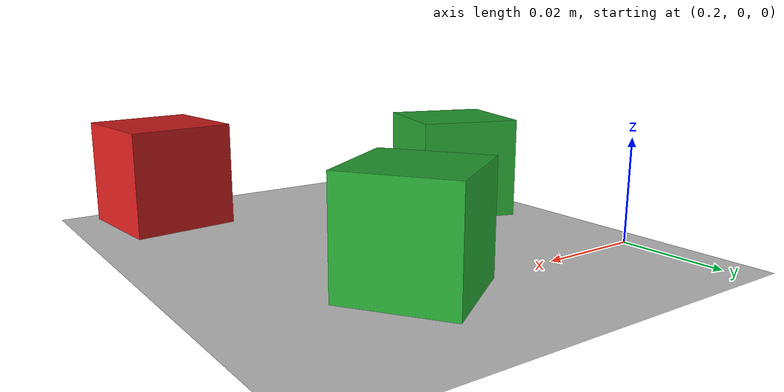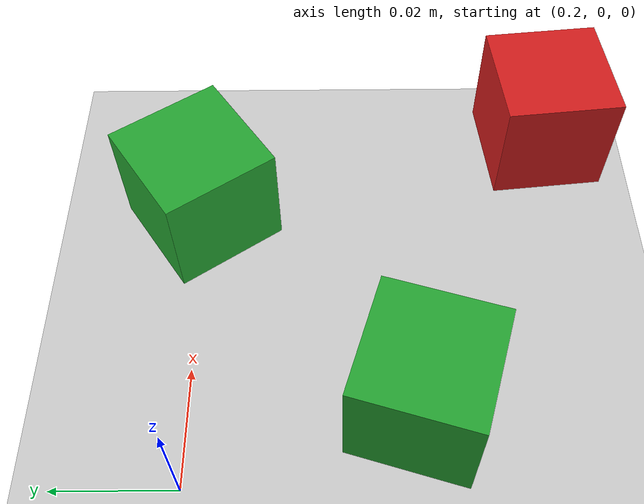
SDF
<sdf version='1.7'>
  <world name='default'>
    <scene>
      <ambient>0 0 0 1</ambient>
      <shadows>0</shadows>
      <background>0.7 0.7 0.7 1</background>
    </scene>
    <!-- A global light source -->
    <include>
      <uri>model://sun</uri>
    </include>
    <!-- A ground plane -->
    <include>
      <uri>model://ground_plane</uri>
    </include>

    <!-- Cubes for Niryo Workspace -->
    <model name='cube_red'>
      <include>
        <uri>model://cube_red</uri>
      </include>
      <pose frame=''>0.267 -0.062 0.011 0.0 0.0 0.1</pose>
    </model>
    <model name='cube_green'>
      <include>
        <uri>model://cube_green</uri>
      </include>
      <pose frame=''>0.212 -0.0369 0.011 0 0 -0.3</pose>
    </model>
    <model name='cube_green2'>
      <include>
        <uri>model://cube_green</uri>
      </include>
      <pose frame=''>0.25 0 0.011 0 -0 0.6</pose>
    </model>

    <physics name='default_physics' default='0' type='ode'>
      <max_step_size>0.001</max_step_size>
      <real_time_factor>1</real_time_factor>
      <real_time_update_rate>1000</real_time_update_rate>
    </physics>
    <gui fullscreen='0'>
      <camera name='user_camera'>
        <pose frame=''>0.498673 -1.52506 0.903313 0 0.429798 1.824</pose>
        <view_controller>orbit</view_controller>
        <projection_type>perspective</projection_type>
      </camera>
    </gui>
    <gravity>0 0 -9.8</gravity>
    <magnetic_field>6e-06 2.3e-05 -4.2e-05</magnetic_field>
    <atmosphere type='adiabatic'/>
    <wind/>
    <spherical_coordinates>
      <surface_model>EARTH_WGS84</surface_model>
      <latitude_deg>0</latitude_deg>
      <longitude_deg>0</longitude_deg>
      <elevation>0</elevation>
      <heading_deg>0</heading_deg>
    </spherical_coordinates>

    <!-- SplotLight source -->
    <light name='user_spot_light_0' type='spot'>
      <pose>0.24066 -0.017779 1 0 -0 0</pose>
      <diffuse>0.5 0.5 0.5 1</diffuse>
      <specular>0.1 0.1 0.1 1</specular>
      <direction>0 0 -1</direction>
      <attenuation>
        <range>20</range>
        <constant>0.5</constant>
        <linear>0.01</linear>
        <quadratic>0.001</quadratic>
      </attenuation>
      <cast_shadows>0</cast_shadows>
      <spot>
        <inner_angle>0.6</inner_angle>
        <outer_angle>1</outer_angle>
        <falloff>1</falloff>
      </spot>
    </light>

  </world>
</sdf>

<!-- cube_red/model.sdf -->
<sdf version='1.6'>
  <model name='cube_red'>
    <link name='link_1'>
      <inertial>
        <mass>1e-4</mass>
        <inertia>
          <ixx>1.0e-8</ixx>
          <ixy>0</ixy>
          <ixz>0</ixz>
          <iyy>1.0e-8</iyy>
          <iyz>0</iyz>
          <izz>1.0e-8</izz>
        </inertia>
        <pose frame=''>0 0 0 0 -0 0</pose>
      </inertial>
      <pose frame=''>0 0 0 0 -0 0</pose>
      <gravity>1</gravity>
      <self_collide>0</self_collide>
      <kinematic>0</kinematic>
      <enable_wind>0</enable_wind>
      <visual name='visual'>
        <pose frame=''>0 0 0 0 -0 0</pose>
        <geometry>
          <box>
            <size>0.02 0.02 0.02</size>
          </box>
        </geometry>
        <material>
          <lighting>1</lighting>
          <script>
            <uri>file://media/materials/scripts/gazebo.material</uri>
            <name>Gazebo/Grey</name>
          </script>
          <shader type='vertex'>
            <normal_map>__default__</normal_map>
          </shader>
          <ambient>0.643 0 0 1</ambient>
          <diffuse>0.835 0.114 0.114 1</diffuse>
          <specular>0.333 0.341 0.325 1</specular>
          <emissive>0 0 0 1</emissive>
        </material>
        <transparency>0</transparency>
        <cast_shadows>1</cast_shadows>
      </visual>
      <collision name='collision'>
        <laser_retro>0</laser_retro>
        <max_contacts>50</max_contacts>
        <pose frame=''>0 0 0 0 -0 0</pose>
        <geometry>
          <box>
            <size>0.02 0.02 0.02</size>
          </box>
        </geometry>
        <surface>
          <friction>
            <ode>
              <mu>1e+6</mu>
              <mu2>1e+6</mu2>
            </ode>
            <torsional>
              <coefficient>1</coefficient>
              <patch_radius>0</patch_radius>
              <surface_radius>0</surface_radius>
              <use_patch_radius>1</use_patch_radius>
              <ode>
                <slip>0</slip>
              </ode>
            </torsional>
          </friction>
          <bounce>
            <restitution_coefficient>0</restitution_coefficient>
            <threshold>1e+06</threshold>
          </bounce>
          <contact>
            <collide_without_contact>0</collide_without_contact>
            <collide_without_contact_bitmask>1</collide_without_contact_bitmask>
            <collide_bitmask>1</collide_bitmask>
            <ode>
              <soft_cfm>0</soft_cfm>
              <soft_erp>0.2</soft_erp>
              <kp>1e+13</kp>
              <kd>1</kd>
              <max_vel>0.0</max_vel>
              <min_depth>0.002</min_depth>
            </ode>
            <bullet>
              <split_impulse>1</split_impulse>
              <split_impulse_penetration_threshold>-0.01</split_impulse_penetration_threshold>
              <soft_cfm>0</soft_cfm>
              <soft_erp>0.2</soft_erp>
              <kp>1e+13</kp>
              <kd>1</kd>
            </bullet>
          </contact>
        </surface>
      </collision>
    </link>
    <static>0</static>
    <allow_auto_disable>1</allow_auto_disable>
  </model>
</sdf>

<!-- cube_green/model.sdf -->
<sdf version='1.6'>
  <model name='cube_green'>
    <link name='link_1'>
      <inertial>
        <mass>1e-4</mass>
        <inertia>
          <ixx>1.0e-8</ixx>
          <ixy>0</ixy>
          <ixz>0</ixz>
          <iyy>1.0e-8</iyy>
          <iyz>0</iyz>
          <izz>1.0e-8</izz>
        </inertia>
        <pose frame=''>0 0 0 0 -0 0</pose>
      </inertial>
      <pose frame=''>0 0 0 0 -0 0</pose>
      <gravity>1</gravity>
      <self_collide>0</self_collide>
      <kinematic>0</kinematic>
      <enable_wind>0</enable_wind>
      <visual name='visual'>
        <pose frame=''>0 0 0 0 -0 0</pose>
        <geometry>
          <box>
            <size>0.02 0.02 0.02</size>
          </box>
        </geometry>
        <material>
          <lighting>1</lighting>
          <script>
            <uri>file://media/materials/scripts/gazebo.material</uri>
            <name>Gazebo/Green</name>
          </script>
          <shader type='vertex'>
            <normal_map>__default__</normal_map>
          </shader>
          <ambient>0.208 0.706 0.298 1</ambient>
          <diffuse>0.451 0.824 0.082 1</diffuse>
          <specular>0.18 0.204 0.212 1</specular>
          <emissive>0 0 0 1</emissive>
        </material>
        <transparency>0</transparency>
        <cast_shadows>1</cast_shadows>
      </visual>
      <collision name='collision'>
        <laser_retro>0</laser_retro>
        <max_contacts>50</max_contacts>
        <pose frame=''>0 0 0 0 -0 0</pose>
        <geometry>
          <box>
            <size>0.02 0.02 0.02</size>
          </box>
        </geometry>
        <surface>
          <friction>
            <ode>
              <mu>1e+6</mu>
              <mu2>1e+6</mu2>
            </ode>
            <torsional>
              <coefficient>1</coefficient>
              <patch_radius>0</patch_radius>
              <surface_radius>0</surface_radius>
              <use_patch_radius>1</use_patch_radius>
              <ode>
                <slip>0</slip>
              </ode>
            </torsional>
          </friction>
          <bounce>
            <restitution_coefficient>0</restitution_coefficient>
            <threshold>1e+06</threshold>
          </bounce>
          <contact>
            <collide_without_contact>0</collide_without_contact>
            <collide_without_contact_bitmask>1</collide_without_contact_bitmask>
            <collide_bitmask>1</collide_bitmask>
            <ode>
              <soft_cfm>0</soft_cfm>
              <soft_erp>0.2</soft_erp>
              <kp>1e+13</kp>
              <kd>1</kd>
              <max_vel>0.0</max_vel>
              <min_depth>0.002</min_depth>
            </ode>
            <bullet>
              <split_impulse>1</split_impulse>
              <split_impulse_penetration_threshold>-0.01</split_impulse_penetration_threshold>
              <soft_cfm>0</soft_cfm>
              <soft_erp>0.2</soft_erp>
              <kp>1e+13</kp>
              <kd>1</kd>
            </bullet>
          </contact>
        </surface>
      </collision>
    </link>
    <static>0</static>
    <allow_auto_disable>1</allow_auto_disable>
  </model>
</sdf>
